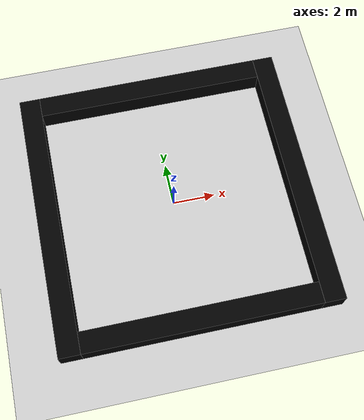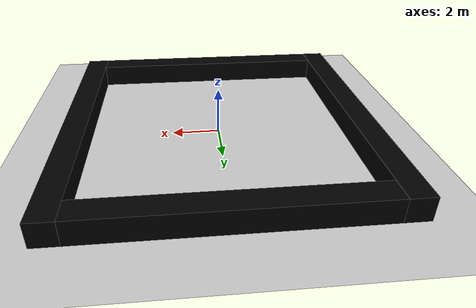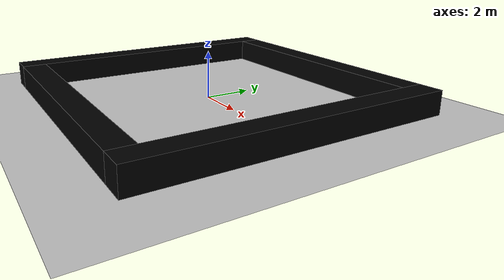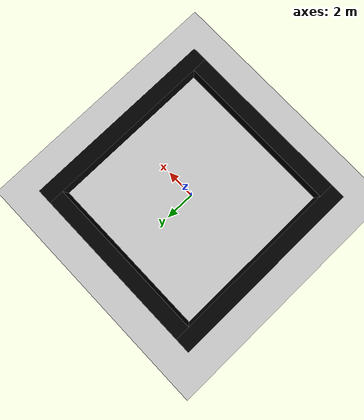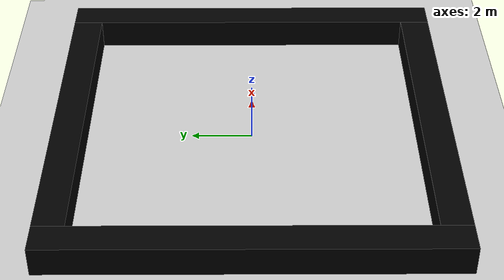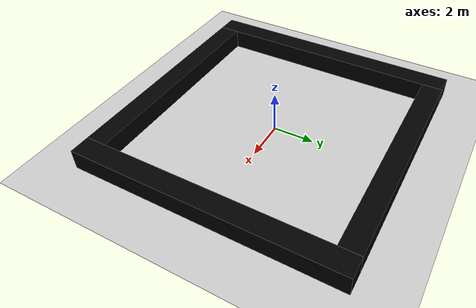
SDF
<sdf version="1.5">
 <world name="default">
  <include><uri>model://ground_plane</uri></include>
  <include><uri>model://sun</uri></include>
  <model name="parallelepiped">
   <static>true</static>
   <link name="link">
    <collision name="collision"><geometry><box><size>1 13 1</size></box></geometry></collision>
    <visual name="visual">
     <geometry><box><size>1 13 1</size></box></geometry>
     <material>
      <ambient>0 0 0 1</ambient>
      <diffuse>0 0 0 1</diffuse>
      <specular>0 0 0 1</specular>
      <emissive>0 0 0 1</emissive>
     </material>
    </visual>
   </link>
   <pose>6 0 0.5 0 0 0</pose>
  </model>
  <model name="parallelepiped2">
   <static>true</static>
   <link name="link">
    <collision name="collision"><geometry><box><size>1 13 1</size></box></geometry></collision>
    <visual name="visual">
     <geometry><box><size>1 13 1</size></box></geometry>
     <material>
      <ambient>0 0 0 1</ambient>
      <diffuse>0 0 0 1</diffuse>
      <specular>0 0 0 1</specular>
      <emissive>0 0 0 1</emissive>
     </material>
    </visual>
   </link>
   <pose>-6 0 0.5 0 0 0</pose>
  </model>
  <model name="parallelepiped3">
   <static>true</static>
   <link name="link">
    <collision name="collision"><geometry><box><size>11 1 1</size></box></geometry></collision>
    <visual name="visual">
     <geometry><box><size>11 1 1</size></box></geometry>
     <material>
      <ambient>0 0 0 1</ambient>
      <diffuse>0 0 0 1</diffuse>
      <specular>0 0 0 1</specular>
      <emissive>0 0 0 1</emissive>
     </material>
    </visual>
   </link>
   <pose>0 6 0.5 0 0 0</pose>
  </model>
  <model name="parallelepiped4">
   <static>true</static>
   <link name="link">
    <collision name="collision"><geometry><box><size>11 1 1</size></box></geometry></collision>
    <visual name="visual">
     <geometry><box><size>11 1 1</size></box></geometry>
     <material>
      <ambient>0 0 0 1</ambient>
      <diffuse>0 0 0 1</diffuse>
      <specular>0 0 0 1</specular>
      <emissive>0 0 0 1</emissive>
     </material>
    </visual>
   </link>
   <pose>0 -6 0.5 0 0 0</pose>
  </model>
 </world>
</sdf>
